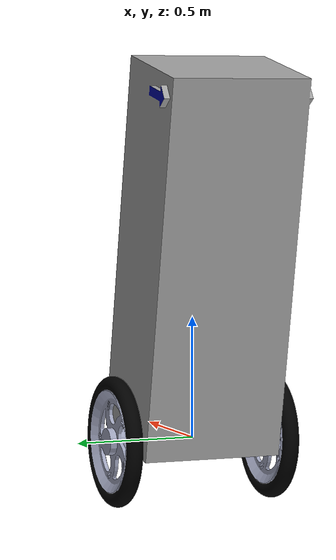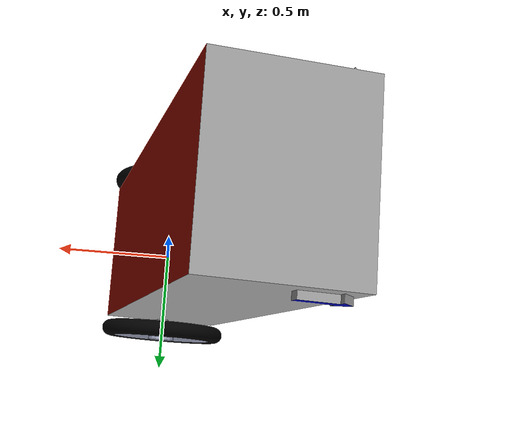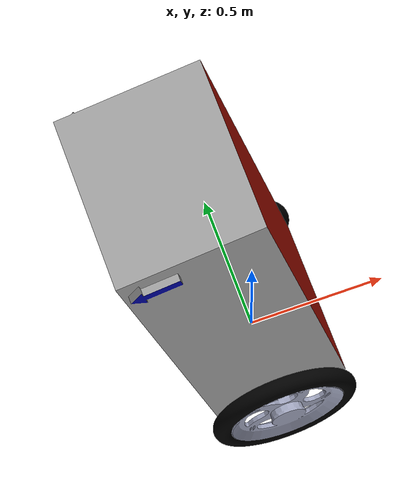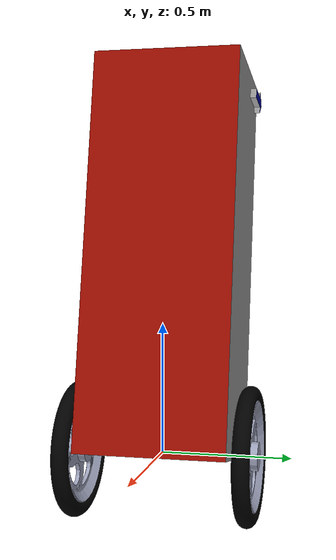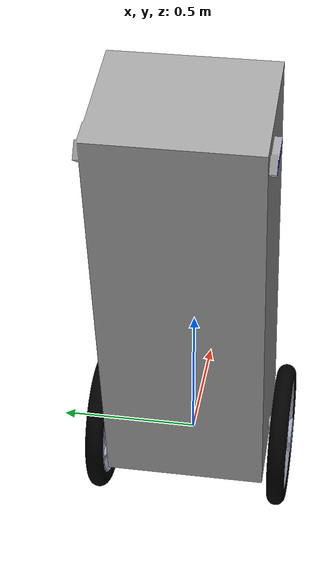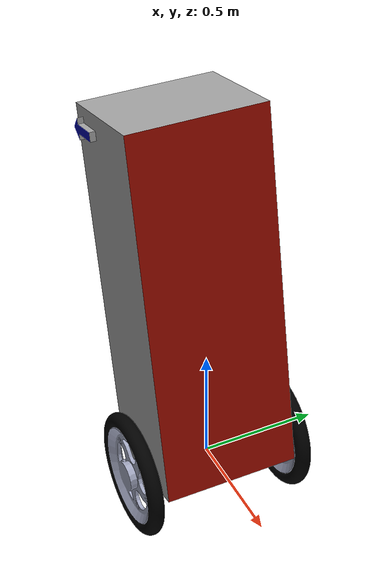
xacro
<robot name="3_dof" xmlns:xacro="http://www.ros.org/wiki/xacro">

<xacro:property name="wheel_separation" value="0.68" />
<xacro:property name="wheel_radius" value="0.25" />
<xacro:property name="wheel_width"  value="0.010" />
<xacro:property name="body_height"  value="0.1" />
<xacro:property name="body_width"   value="0.050" />
<xacro:property name="body_length"  value="0.035" />

<link name="3dof_body">

    <visual>
      <origin xyz="0 0 ${0.5*body_height}" rpy="0 -0.20 0"/>
      <geometry>
        <mesh filename="package://krang_simplified/3dof/base2.dae" />
      </geometry>
    </visual>

    <inertial>
      <origin xyz="0 0 ${0.5*body_height}" rpy="0 0 0"/>
      <mass value="0.180"/>
      <inertia ixx="6.0e-4" ixy="0" ixz="0" iyy="6.0e-4" iyz="0" izz="6.0e-4"/>
    </inertial>

  </link>

  <link name="wheelR">

    <visual>
      <origin xyz="0 0 0" rpy="0 0 0" />
      <geometry>
        <mesh filename="package://krang_simplified/3dof/wheel.dae" />
      </geometry>
    </visual>

    <collision>
      <origin xyz="0 0 0" rpy="0 0 0" />
      <geometry>
        <mesh filename="package://krang_simplified/3dof/wheel.dae" />
      </geometry>
    </collision>

    <inertial>
     <origin xyz="0 0 0" rpy="0 0 0"/>
     <mass value="0.030"/>
     <inertia ixx="1.75e-5" ixy="0" ixz="0" iyy="1.75e-5" iyz="0" izz="1.75e-5"/>
    </inertial>

    <soft_shape>
	    <total_mass>0.04</total_mass>
	    <geometry>
	        <mesh filename="package://krang_simplified/3dof/wheel.dae" />
	    </geometry>
		<kv>500.0</kv>
		<ke>0.0</ke>
		<damp>5.0</damp>
        </soft_shape>

  </link>

    <link name="wheelL">

    <visual>
      <origin xyz="0 0 0" rpy="0 0 0" />
      <geometry>
        <mesh filename="package://krang_simplified/3dof/wheel.dae" />
      </geometry>
    </visual>

    <collision>
      <origin xyz="0 0 0" rpy="0 0 0" />
      <geometry>
        <mesh filename="package://krang_simplified/3dof/wheel.dae" />
      </geometry>
    </collision>

    <inertial>
     <origin xyz="0 0 0" rpy="0 0 0"/>
     <mass value="0.030"/>
     <inertia ixx="1.75e-5" ixy="0" ixz="0" iyy="1.75e-5" iyz="0" izz="1.75e-5"/>
    </inertial>

    <soft_shape>
	    <total_mass>0.04s</total_mass>
	    <geometry>
	        <mesh filename="package://krang_simplified/3dof/wheel.dae" />
	    </geometry>
		<kv>500.0</kv>
		<ke>0.0</ke>
		<damp>5.0</damp>
        </soft_shape>

  </link>

  <joint name="jointR" type="continuous">
    <parent link="3dof_body"/>
    <child link="wheelR"/>
    <origin xyz = "0 ${-wheel_separation * 0.5} 0" rpy="0 0 0" />
	<axis xyz="0 1 0" />
  </joint>

  <joint name="jointL" type="continuous">
    <parent link="3dof_body"/>
    <child link="wheelL"/>
    <origin xyz = "0 ${+wheel_separation * 0.5} 0" rpy="0 0 0" />
	<axis xyz="0 1 0" />
  </joint>

  <gazebo>
	<plugin name="gazebo_ros_control" filename="libgazebo_ros_control.so">
	<robotNamespace>/3dof</robotNamespace>
	<robotSimType>gazebo_ros_control/DefaultRobotHWSim</robotSimType>
	<legacyModeNS>true</legacyModeNS>
	</plugin>
  </gazebo>

  <gazebo>
   <plugin name="edumip_balance_ros_gazebo_plugin" filename="libedumip_balance_ros_gazebo_plugin.so">
   <rosDebugLevel>3</rosDebugLevel>
   <updateRate>100</updateRate>
   <robotBaseFrame>3dof_body</robotBaseFrame>
   <leftJoint>jointL</leftJoint>
   <rightJoint>jointR</rightJoint>
   <wheelSeparation>${wheel_separation}</wheelSeparation>
   <wheelDiameter>0.068</wheelDiameter>
   <commandTopic>/edumip/cmd</commandTopic>
   <stateTopic>/edumip/state</stateTopic>
   </plugin>
 </gazebo>

</robot>
